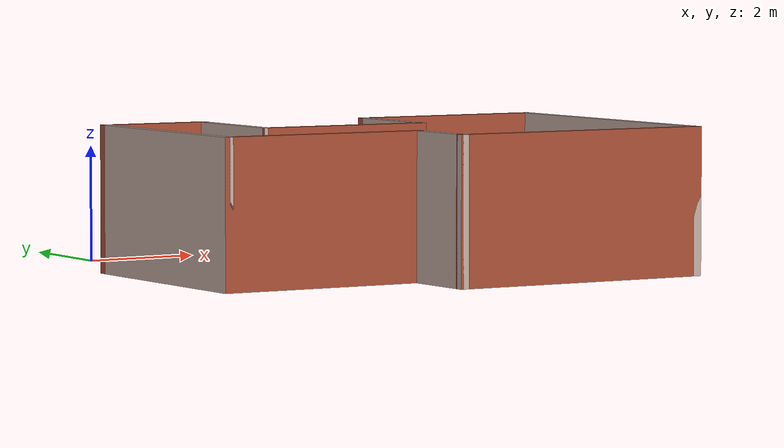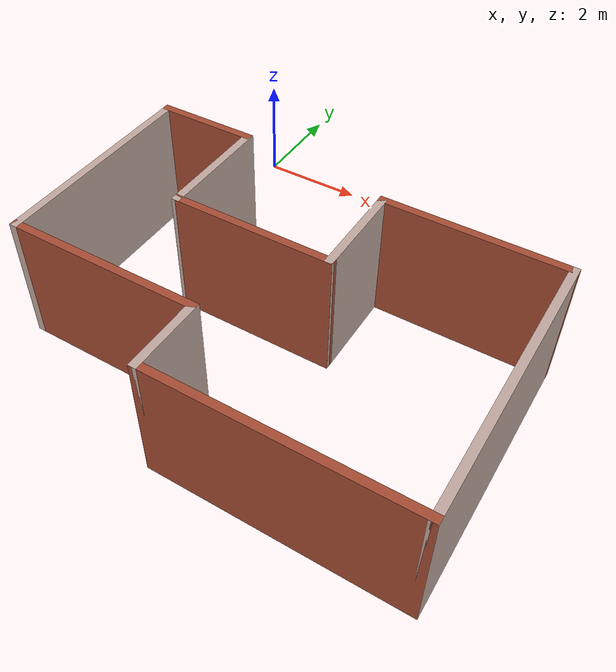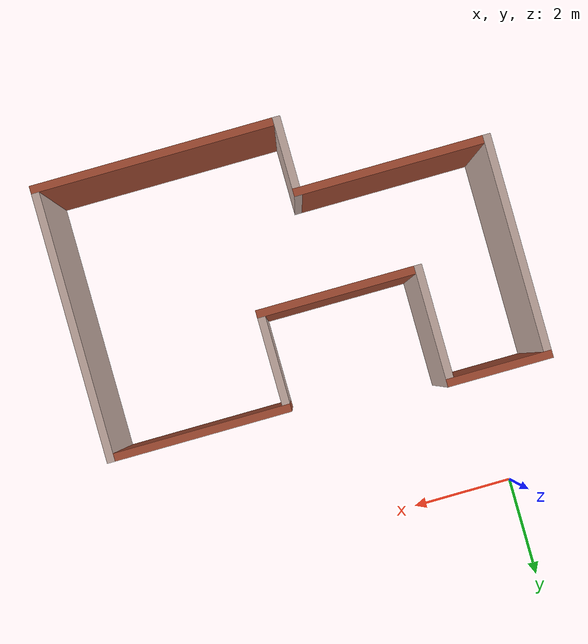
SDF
<?xml version='1.0'?>
<sdf version='1.6'>
  <model name='building'>
    <pose frame=''>3.16801 -5.06739 0 0 -0 0</pose>
    <link name='Wall_15'>
      <collision name='Wall_15_Collision'>
        <geometry>
          <box>
            <size>2 0.15 2.5</size>
          </box>
        </geometry>
        <pose frame=''>0 0 1.25 0 -0 0</pose>
      </collision>
      <visual name='Wall_15_Visual'>
        <pose frame=''>0 0 1.25 0 -0 0</pose>
        <geometry>
          <box>
            <size>2 0.15 2.5</size>
          </box>
        </geometry>
        <material>
          <script>
            <uri>file://media/materials/scripts/gazebo.material</uri>
            <name>Gazebo/Bricks</name>
          </script>
          <ambient>1 1 1 1</ambient>
        </material>
        <meta>
          <layer>0</layer>
        </meta>
      </visual>
      <pose frame=''>-3.175 2.725 0 0 -0 0</pose>
    </link>
    <link name='Wall_16'>
      <collision name='Wall_16_Collision'>
        <geometry>
          <box>
            <size>2.3 0.15 2.5</size>
          </box>
        </geometry>
        <pose frame=''>0 0 1.25 0 -0 0</pose>
      </collision>
      <visual name='Wall_16_Visual'>
        <pose frame=''>0 0 1.25 0 -0 0</pose>
        <geometry>
          <box>
            <size>2.3 0.15 2.5</size>
          </box>
        </geometry>
        <material>
          <script>
            <uri>file://media/materials/scripts/gazebo.material</uri>
            <name>Gazebo/Grey</name>
          </script>
          <ambient>0.760784 0.662745 0.627451 1</ambient>
        </material>
        <meta>
          <layer>0</layer>
        </meta>
      </visual>
      <pose frame=''>-2.25 1.65 0 0 0 -1.5708</pose>
    </link>
    <link name='Wall_17'>
      <collision name='Wall_17_Collision'>
        <geometry>
          <box>
            <size>3.15 0.15 2.5</size>
          </box>
        </geometry>
        <pose frame=''>0 0 1.25 0 -0 0</pose>
      </collision>
      <visual name='Wall_17_Visual'>
        <pose frame=''>0 0 1.25 0 -0 0</pose>
        <geometry>
          <box>
            <size>3.15 0.15 2.5</size>
          </box>
        </geometry>
        <material>
          <script>
            <uri>file://media/materials/scripts/gazebo.material</uri>
            <name>Gazebo/Bricks</name>
          </script>
          <ambient>1 1 1 1</ambient>
        </material>
        <meta>
          <layer>0</layer>
        </meta>
      </visual>
      <pose frame=''>-0.75 0.573894 0 0 0 -0.000737</pose>
    </link>
    <link name='Wall_26'>
      <collision name='Wall_26_Collision'>
        <geometry>
          <box>
            <size>4.25 0.15 2.5</size>
          </box>
        </geometry>
        <pose frame=''>0 0 1.25 0 -0 0</pose>
      </collision>
      <visual name='Wall_26_Visual'>
        <pose frame=''>0 0 1.25 0 -0 0</pose>
        <geometry>
          <box>
            <size>4.25 0.15 2.5</size>
          </box>
        </geometry>
        <material>
          <script>
            <uri>file://media/materials/scripts/gazebo.material</uri>
            <name>Gazebo/Grey</name>
          </script>
          <ambient>0.760784 0.662745 0.627451 1</ambient>
        </material>
        <meta>
          <layer>0</layer>
        </meta>
      </visual>
      <pose frame=''>-4.1 0.675 0 0 0 -1.5708</pose>
    </link>
    <link name='Wall_27'>
      <collision name='Wall_27_Collision'>
        <geometry>
          <box>
            <size>3.75 0.15 2.5</size>
          </box>
        </geometry>
        <pose frame=''>0 0 1.25 0 -0 0</pose>
      </collision>
      <visual name='Wall_27_Visual'>
        <pose frame=''>0 0 1.25 0 -0 0</pose>
        <geometry>
          <box>
            <size>3.75 0.15 2.5</size>
          </box>
        </geometry>
        <material>
          <script>
            <uri>file://media/materials/scripts/gazebo.material</uri>
            <name>Gazebo/Bricks</name>
          </script>
          <ambient>1 1 1 1</ambient>
        </material>
        <meta>
          <layer>0</layer>
        </meta>
      </visual>
      <pose frame=''>-2.3 -1.375 0 0 -0 0</pose>
    </link>
    <link name='Wall_28'>
      <collision name='Wall_28_Collision'>
        <geometry>
          <box>
            <size>1.5 0.15 2.5</size>
          </box>
        </geometry>
        <pose frame=''>0 0 1.25 0 -0 0</pose>
      </collision>
      <visual name='Wall_28_Visual'>
        <pose frame=''>0 0 1.25 0 -0 0</pose>
        <geometry>
          <box>
            <size>1.5 0.15 2.5</size>
          </box>
        </geometry>
        <material>
          <script>
            <uri>file://media/materials/scripts/gazebo.material</uri>
            <name>Gazebo/Grey</name>
          </script>
          <ambient>0.760784 0.662745 0.627451 1</ambient>
        </material>
        <meta>
          <layer>0</layer>
        </meta>
      </visual>
      <pose frame=''>-0.5 -2.05 0 0 0 -1.5708</pose>
    </link>
    <link name='Wall_29'>
      <collision name='Wall_29_Collision'>
        <geometry>
          <box>
            <size>4.75 0.15 2.5</size>
          </box>
        </geometry>
        <pose frame=''>0 0 1.25 0 -0 0</pose>
      </collision>
      <visual name='Wall_29_Visual'>
        <pose frame=''>0 0 1.25 0 -0 0</pose>
        <geometry>
          <box>
            <size>4.75 0.15 2.5</size>
          </box>
        </geometry>
        <material>
          <script>
            <uri>file://media/materials/scripts/gazebo.material</uri>
            <name>Gazebo/Bricks</name>
          </script>
          <ambient>1 1 1 1</ambient>
        </material>
        <meta>
          <layer>0</layer>
        </meta>
      </visual>
      <pose frame=''>1.8 -2.725 0 0 -0 0</pose>
    </link>
    <link name='Wall_30'>
      <collision name='Wall_30_Collision'>
        <geometry>
          <box>
            <size>5.25 0.15 2.5</size>
          </box>
        </geometry>
        <pose frame=''>0 0 1.25 0 -0 0</pose>
      </collision>
      <visual name='Wall_30_Visual'>
        <pose frame=''>0 0 1.25 0 -0 0</pose>
        <geometry>
          <box>
            <size>5.25 0.15 2.5</size>
          </box>
        </geometry>
        <material>
          <script>
            <uri>file://media/materials/scripts/gazebo.material</uri>
            <name>Gazebo/Grey</name>
          </script>
          <ambient>0.760784 0.662745 0.627451 1</ambient>
        </material>
        <meta>
          <layer>0</layer>
        </meta>
      </visual>
      <pose frame=''>4.1 -0.175 0 0 -0 1.5708</pose>
    </link>
    <link name='Wall_31'>
      <collision name='Wall_31_Collision'>
        <geometry>
          <box>
            <size>3.5 0.15 2.5</size>
          </box>
        </geometry>
        <pose frame=''>0 0 1.25 0 -0 0</pose>
      </collision>
      <visual name='Wall_31_Visual'>
        <pose frame=''>0 0 1.25 0 -0 0</pose>
        <geometry>
          <box>
            <size>3.5 0.15 2.5</size>
          </box>
        </geometry>
        <material>
          <script>
            <uri>file://media/materials/scripts/gazebo.material</uri>
            <name>Gazebo/Bricks</name>
          </script>
          <ambient>1 1 1 1</ambient>
        </material>
        <meta>
          <layer>0</layer>
        </meta>
      </visual>
      <pose frame=''>2.425 2.375 0 0 -0 3.14159</pose>
    </link>
    <link name='Wall_32'>
      <collision name='Wall_32_Collision'>
        <geometry>
          <box>
            <size>1.95 0.15 2.5</size>
          </box>
        </geometry>
        <pose frame=''>0 0 1.25 0 -0 0</pose>
      </collision>
      <visual name='Wall_32_Visual'>
        <pose frame=''>0 0 1.25 0 -0 0</pose>
        <geometry>
          <box>
            <size>1.95 0.15 2.5</size>
          </box>
        </geometry>
        <material>
          <script>
            <uri>file://media/materials/scripts/gazebo.material</uri>
            <name>Gazebo/Grey</name>
          </script>
          <ambient>0.760784 0.662745 0.627451 1</ambient>
        </material>
        <meta>
          <layer>0</layer>
        </meta>
      </visual>
      <pose frame=''>0.75 1.475 0 0 0 -1.5708</pose>
    </link>
    <static>1</static>
  </model>
</sdf>
